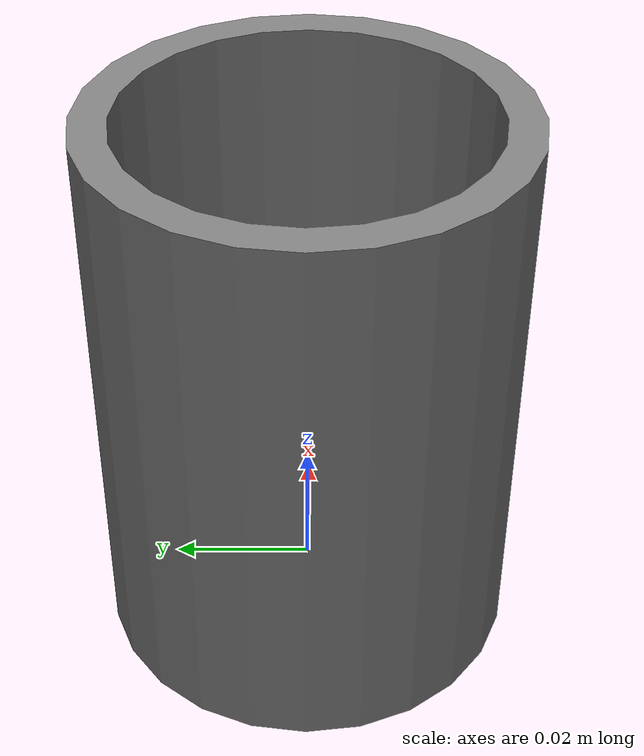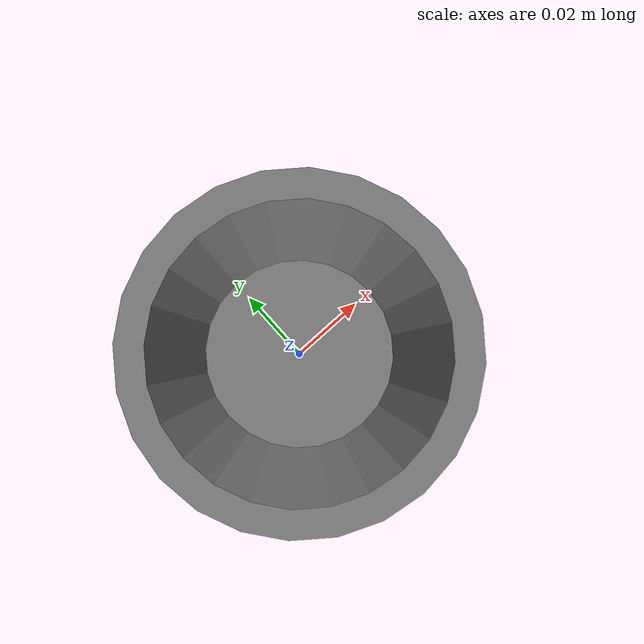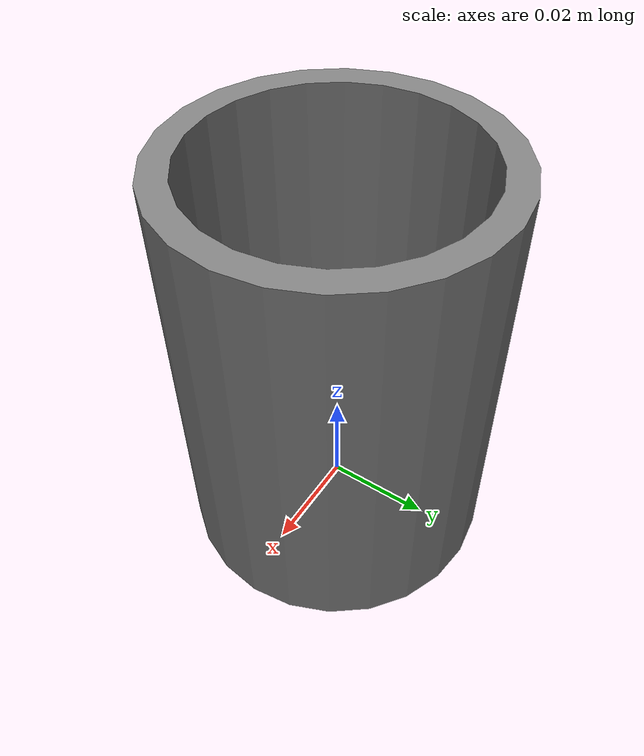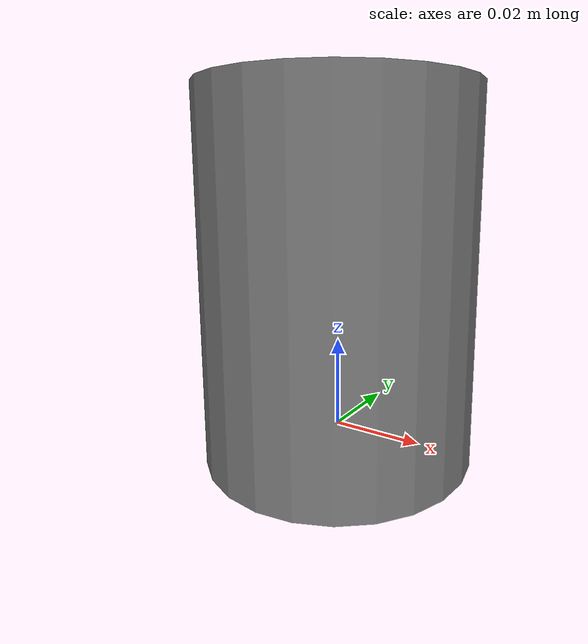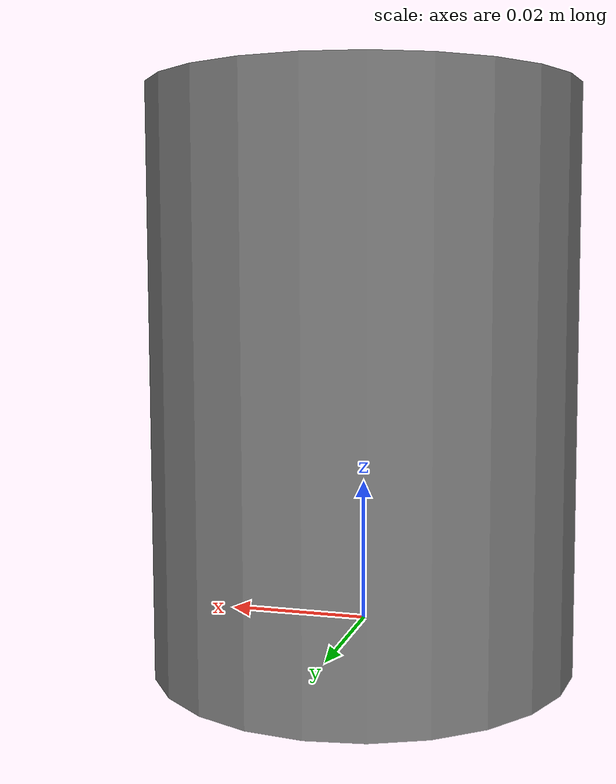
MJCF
<mujoco model="cup">
  <asset>
    <mesh name="cup" file="cup.obj"/>
    <mesh name="cup_collision_0" file="cup_collision_0.obj"/>
    <mesh name="cup_collision_1" file="cup_collision_1.obj"/>
    <mesh name="cup_collision_2" file="cup_collision_2.obj"/>
    <mesh name="cup_collision_3" file="cup_collision_3.obj"/>
    <mesh name="cup_collision_4" file="cup_collision_4.obj"/>
    <mesh name="cup_collision_5" file="cup_collision_5.obj"/>
    <mesh name="cup_collision_6" file="cup_collision_6.obj"/>
    <mesh name="cup_collision_7" file="cup_collision_7.obj"/>
    <mesh name="cup_collision_8" file="cup_collision_8.obj"/>
    <mesh name="cup_collision_9" file="cup_collision_9.obj"/>
    <mesh name="cup_collision_10" file="cup_collision_10.obj"/>
    <mesh name="cup_collision_11" file="cup_collision_11.obj"/>
    <mesh name="cup_collision_12" file="cup_collision_12.obj"/>
    <mesh name="cup_collision_13" file="cup_collision_13.obj"/>
    <mesh name="cup_collision_14" file="cup_collision_14.obj"/>
    <mesh name="cup_collision_15" file="cup_collision_15.obj"/>
    <mesh name="cup_collision_16" file="cup_collision_16.obj"/>
    <mesh name="cup_collision_17" file="cup_collision_17.obj"/>
    <mesh name="cup_collision_18" file="cup_collision_18.obj"/>
    <mesh name="cup_collision_19" file="cup_collision_19.obj"/>
    <mesh name="cup_collision_20" file="cup_collision_20.obj"/>
    <mesh name="cup_collision_21" file="cup_collision_21.obj"/>
    <mesh name="cup_collision_22" file="cup_collision_22.obj"/>
    <mesh name="cup_collision_23" file="cup_collision_23.obj"/>
    <mesh name="cup_collision_24" file="cup_collision_24.obj"/>
    <mesh name="cup_collision_25" file="cup_collision_25.obj"/>
    <mesh name="cup_collision_26" file="cup_collision_26.obj"/>
    <mesh name="cup_collision_27" file="cup_collision_27.obj"/>
    <mesh name="cup_collision_28" file="cup_collision_28.obj"/>
    <mesh name="cup_collision_29" file="cup_collision_29.obj"/>
    <mesh name="cup_collision_30" file="cup_collision_30.obj"/>
    <mesh name="cup_collision_31" file="cup_collision_31.obj"/>
  </asset>
  <worldbody>
    <body name="cup">
      <geom mesh="cup" type="mesh" contype="0" conaffinity="0" group="2"/>
      <geom mesh="cup_collision_0" type="mesh" group="3"/>
      <geom mesh="cup_collision_1" type="mesh" group="3"/>
      <geom mesh="cup_collision_2" type="mesh" group="3"/>
      <geom mesh="cup_collision_3" type="mesh" group="3"/>
      <geom mesh="cup_collision_4" type="mesh" group="3"/>
      <geom mesh="cup_collision_5" type="mesh" group="3"/>
      <geom mesh="cup_collision_6" type="mesh" group="3"/>
      <geom mesh="cup_collision_7" type="mesh" group="3"/>
      <geom mesh="cup_collision_8" type="mesh" group="3"/>
      <geom mesh="cup_collision_9" type="mesh" group="3"/>
      <geom mesh="cup_collision_10" type="mesh" group="3"/>
      <geom mesh="cup_collision_11" type="mesh" group="3"/>
      <geom mesh="cup_collision_12" type="mesh" group="3"/>
      <geom mesh="cup_collision_13" type="mesh" group="3"/>
      <geom mesh="cup_collision_14" type="mesh" group="3"/>
      <geom mesh="cup_collision_15" type="mesh" group="3"/>
      <geom mesh="cup_collision_16" type="mesh" group="3"/>
      <geom mesh="cup_collision_17" type="mesh" group="3"/>
      <geom mesh="cup_collision_18" type="mesh" group="3"/>
      <geom mesh="cup_collision_19" type="mesh" group="3"/>
      <geom mesh="cup_collision_20" type="mesh" group="3"/>
      <geom mesh="cup_collision_21" type="mesh" group="3"/>
      <geom mesh="cup_collision_22" type="mesh" group="3"/>
      <geom mesh="cup_collision_23" type="mesh" group="3"/>
      <geom mesh="cup_collision_24" type="mesh" group="3"/>
      <geom mesh="cup_collision_25" type="mesh" group="3"/>
      <geom mesh="cup_collision_26" type="mesh" group="3"/>
      <geom mesh="cup_collision_27" type="mesh" group="3"/>
      <geom mesh="cup_collision_28" type="mesh" group="3"/>
      <geom mesh="cup_collision_29" type="mesh" group="3"/>
      <geom mesh="cup_collision_30" type="mesh" group="3"/>
      <geom mesh="cup_collision_31" type="mesh" group="3"/>
    </body>
  </worldbody>
</mujoco>
